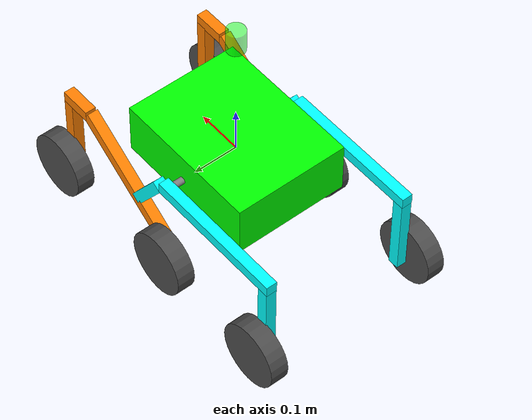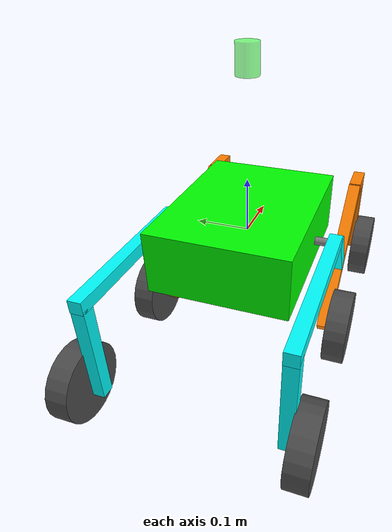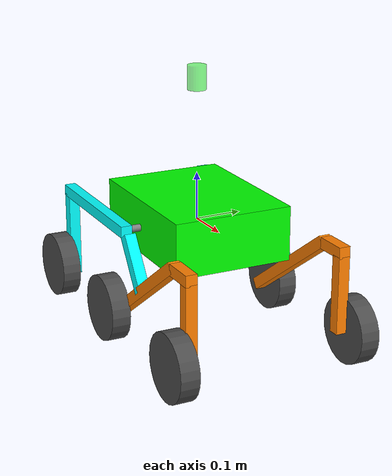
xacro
<?xml version="1.0"?>
<robot xmlns:xacro="http://www.ros.org/wiki/xacro" name="rocker_bogie">

  <!-- Properties for reuse -->
  <xacro:property name="wheel_radius" value="0.07"/>
  <xacro:property name="wheel_length" value="0.04"/>
  <xacro:property name="chassis_size" value="0.334 0.254 0.115"/>
  <xacro:property name="wheel_color" value="0.3 0.3 0.3 1"/>
  <xacro:property name="blue_color" value="0 1 1 1"/>
  <xacro:property name="orange_color" value="1 0.5 0 1"/>

<!-- Base Link at the Center of the Chassis -->
<link name="base_link">
  <visual>
    <geometry>
      <sphere radius="0.01"/>  <!-- Small sphere for visual debugging -->
    </geometry>
    <origin xyz="0 0 0"/>  <!-- Centered inside the chassis -->
    <material name="gray">
      <color rgba="0.5 0.5 0.5 1"/>
    </material>
  </visual>
</link>

<link name="lidar_link">
  <visual>
    <geometry>
          <cylinder length="0.05" radius="0.02"/> <!-- Adjust dimensions as needed -->
      </geometry>
      <material name="green_material">
          <color rgba="0.0 1.0 0.0 0.5"/> <!-- Semi-transparent green for visualization -->
      </material>
  </visual>
  <collision>
      <geometry>
          <cylinder length="0.05" radius="0.02"/>
      </geometry>
  </collision>
  <inertial>
      <mass value="0.1"/> <!-- Adjust mass -->
      <inertia ixx="0.01" ixy="0.0" ixz="0.0" iyy="0.01" iyz="0.0" izz="0.01"/>
  </inertial>
</link>
<joint name="lidar_joint" type="fixed">
  <parent link="base_link"/>
  <child link="lidar_link"/>
  <origin xyz="0 0 0.3" rpy="0 0 0"/> <!-- Position the LiDAR slightly above the rover chassis -->
</joint>

  <!-- Macro for Chassis -->
<xacro:macro name="chassis" params="">
  <link name="chassis">
    <visual>
      <geometry>
        <box size="${chassis_size}"/>
      </geometry>
      <origin xyz="0 0 0"/>
      <material name="green">
        <color rgba="0 1 0 1"/>
      </material>
    </visual>
    <collision>
      <geometry>
        <box size="${chassis_size}"/>
      </geometry>
      <origin xyz="0 0 0"/>
    </collision>
    <inertial>
      <mass value="5.3"/>
      <origin xyz="0 0 0"/>  <!-- Set CoM to the geometric center -->
      <inertia ixx="0.1" ixy="0" ixz="0" iyy="0.1" iyz="0" izz="0.2"/>
    </inertial>
  </link>
</xacro:macro>

  <!-- Macro for Cylinder Connector -->
<xacro:macro name="cylinder_connector" params="name position_y">
  <link name="${name}">
    <visual>
      <geometry>
        <cylinder radius="0.0075" length="0.03"/>
      </geometry>
      <origin xyz="0 ${position_y} 0" rpy="1.5707 0 0"/>
      <material name="gray">
        <color rgba="0.5 0.5 0.5 1"/>
      </material>
    </visual>
    <collision>
      <geometry>
        <cylinder radius="0.0075" length="0.028"/>
      </geometry>
      <origin xyz="0 ${position_y} 0" rpy="1.5707 0 0"/>
    </collision>
    <inertial>
      <mass value="0.5"/>
      <origin xyz="0 ${position_y} 0"/>  <!-- CoM aligned with connector -->
      <inertia ixx="0.00005" ixy="0" ixz="0" iyy="0.00005" iyz="0" izz="0.0001"/>
    </inertial>
  </link>
</xacro:macro>

  <!-- Macro for Rocker Arms -->
<xacro:macro name="rocker_arm" params="name position_y">
  <link name="${name}">
    <visual> <!-- Horizontal Bar Collision -->
      <geometry><box size="0.32 0.024 0.024"/></geometry>
      <origin xyz="-0.147 ${position_y} 0"/>
      <material name="blue"><color rgba="${blue_color}"/></material>
    </visual>
    <visual> <!-- Vertical Bar Collision -->
      <geometry><box size="0.024 0.024 0.186"/></geometry>
      <origin xyz="-0.294 ${position_y} -0.1"/>
      <material name="blue"><color rgba="${blue_color}"/></material>
    </visual>
    <visual> <!-- Rotating Bar Collision -->
      <geometry><box size="0.024 0.024 0.12"/></geometry>
      <origin xyz="0.055 ${position_y} -0.055" rpy="0 -0.61 0"/>
      <material name="blue"><color rgba="${blue_color}"/></material>
    </visual>

    <collision> <!-- Horizontal Bar Collision -->
      <geometry>
        <box size="0.32 0.024 0.024"/>
      </geometry>
      <origin xyz="-0.147 ${position_y} 0"/>
    </collision>

    <collision> <!-- Vertical Bar Collision -->
      <geometry>
        <box size="0.024 0.024 0.186"/>
      </geometry>
      <origin xyz="-0.294 ${position_y} -0.1"/>
    </collision>

    <collision> <!-- Rotating Bar Collision -->
      <geometry>
        <box size="0.024 0.024 0.12"/>
      </geometry>
      <origin xyz="0.055 ${position_y} -0.055" rpy="0 -0.61 0"/>
    </collision>

    <inertial>
      <!-- Adjusted mass to match the size -->
      <mass value="0.25"/>
      <!-- CoM aligned to the center of the rocker arm -->
      <origin xyz="-0.15 ${position_y} 0"/>

      <!-- Adjusted inertia tensor values -->
      <inertia ixx="0.005" ixy="0" ixz="0" iyy="0.006" iyz="0" izz="0.007"/>
    </inertial>
  </link>
</xacro:macro>

  <!-- Macro for Bogie Arms -->
<xacro:macro name="bogie_arm" params="name position_y">
  <link name="${name}">
    <visual> <!-- Horizontal Bar -->
      <geometry>
        <box size="0.07 0.024 0.024"/>
      </geometry>
      <origin xyz="0.177 ${position_y} 0.1"/>
      <material name="orange">
        <color rgba="${orange_color}"/>
      </material>
    </visual>

    <visual> <!-- Front Vertical Bar -->
      <geometry>
        <box size="0.024 0.024 0.162"/>
      </geometry>
      <origin xyz="0.2 ${position_y} 0.01"/>
      <material name="orange">
        <color rgba="${orange_color}"/>
      </material>
    </visual>

    <visual> <!-- Back Rotating Bar -->
      <geometry>
        <box size="0.024 0.024 0.323"/>
      </geometry>
      <origin xyz="0.01 ${position_y} 0.01" rpy="0 0.96 0"/>
      <material name="orange">
        <color rgba="${orange_color}"/>
      </material>
    </visual>

    <collision> <!-- Horizontal Bar Collision -->
      <geometry>
        <box size="0.07 0.024 0.024"/>
      </geometry>
      <origin xyz="0.177 ${position_y} 0.1"/>
    </collision>

    <collision> <!-- Front Vertical Bar Collision -->
      <geometry>
        <box size="0.024 0.024 0.162"/>
      </geometry>
      <origin xyz="0.2 ${position_y} 0.01"/>
    </collision>

    <collision> <!-- Back Rotating Bar Collision -->
      <geometry>
        <box size="0.024 0.024 0.323"/>
      </geometry>
      <origin xyz="0.01 ${position_y} 0.01" rpy="0 0.96 0"/>
    </collision>

    <inertial>
      <mass value="0.4"/>
      <origin xyz="0 0 0"/>
      <inertia ixx="0.004" ixy="0" ixz="0" iyy="0.004" iyz="0" izz="0.008"/>
    </inertial>
  </link>
</xacro:macro>

  <!-- Create Links -->
  <xacro:chassis/>
  <xacro:rocker_arm name="rocker_left" position_y="0"/>
  <xacro:rocker_arm name="rocker_right" position_y="0"/>
  <xacro:bogie_arm name="bogie_left" position_y="0"/>
  <xacro:bogie_arm name="bogie_right" position_y="0"/>
  <xacro:cylinder_connector name="cylinder_connector_left" position_y="0.145"/>
  <xacro:cylinder_connector name="cylinder_connector_right" position_y="-0.145"/>

 <!-- MACRO : Fixed Joints -->
<xacro:macro name="fixed_joint" params="joint_name parent_link child_link origin_z">
  <joint name="${joint_name}" type="fixed">
    <parent link="${parent_link}"/>
    <child link="${child_link}"/>
    <origin xyz="0 0 ${origin_z}"/>
  </joint>
</xacro:macro>

  <!-- Create Fixed Joints -->
<xacro:fixed_joint joint_name="base_to_chassis" parent_link="base_link" child_link="chassis" origin_z="0"/>
<xacro:fixed_joint joint_name="joint_chassis_to_cylinder_left" parent_link="chassis" child_link="cylinder_connector_left" origin_z="0"/>
<xacro:fixed_joint joint_name="joint_chassis_to_cylinder_right" parent_link="chassis" child_link="cylinder_connector_right" origin_z="0"/>

  <!-- MACRO : Revolute Joints -->
<xacro:macro name="revolute_joint"
params="joint_name parent_link child_link origin_x origin_y origin_z">
  <joint name="${joint_name}" type="revolute">
    <parent link="${parent_link}"/>
    <child link="${child_link}"/>
    <origin xyz="${origin_x} ${origin_y} ${origin_z}"/>
    <axis xyz="0 1 0"/>
    <limit lower="-0.26" upper="0.26" velocity="100" effort="100"/>
    <dynamics damping="0.5" spring_stiffness="50"/>
    <gazebo>
      <spring_reference>0.0</spring_reference>  <!-- Neutral position -->
      <spring_stiffness>50.0</spring_stiffness> <!-- Spring constant -->
      <damping>0.5</damping>                   <!-- Damping coefficient -->
    </gazebo>
  </joint>
</xacro:macro>

  <!-- Create Relovute joints : CYlinder-Rocker-Bogie-->
  <xacro:revolute_joint joint_name="joint_cylinder_left_to_rocker_left" parent_link="cylinder_connector_left" child_link="rocker_left" origin_x="0" origin_y="0.165" origin_z="0"/>
  <xacro:revolute_joint joint_name="joint_cylinder_left_to_rocker_right" parent_link="cylinder_connector_right" child_link="rocker_right" origin_x="0" origin_y="-0.165" origin_z="0"/>
  <xacro:revolute_joint joint_name="joint_rocker_to_bogie_left" parent_link="rocker_left" child_link="bogie_left" origin_x="0.1" origin_y="0" origin_z="-0.1"/>
  <xacro:revolute_joint joint_name="joint_rocker_to_bogie_right" parent_link="rocker_right" child_link="bogie_right" origin_x="0.1" origin_y="0" origin_z="-0.1"/>

  <!-- Macro  Wheels links -->
  <xacro:macro name="wheel" params="name">
    <link name="${name}">
      <visual>
        <geometry><cylinder radius="${wheel_radius}" length="${wheel_length}"/></geometry>
        <origin xyz="0 0 0" rpy="1.5707 0 0"/>
        <material name="gray"><color rgba="${wheel_color}"/></material>
      </visual>
      <collision>
        <geometry><cylinder radius="${wheel_radius}" length="${wheel_length}"/></geometry>
        <origin xyz="0 0 0" rpy="1.5707 0 0"/>
      </collision>
      <inertial><mass value="4"/><origin xyz="0 0 0"/>
        <inertia ixx="0.0005" ixy="0" ixz="0" iyy="0.0005" iyz="0" izz="0.001"/>
      </inertial>
    </link>
  </xacro:macro>

<!-- MACRO : Wheel Joints -->
<xacro:macro name="wheel_joint" params="wheel_name parent_link origin_x origin_y origin_z">
  <joint name="joint_${wheel_name}" type="continuous">
    <parent link="${parent_link}"/> <!-- Attach the wheel to the correct parent link (e.g., bogie or rocker) -->
    <child link="${wheel_name}"/>
    <origin xyz="${origin_x} ${origin_y} ${origin_z}"/>
    <axis xyz="0 1 0"/> <!-- Rotate around y-axis -->
    <gazebo>
      <mu1>2.0</mu1> <!-- Primary friction coefficient -->
      <mu2>2.0</mu2> <!-- Secondary friction coefficient -->
    </gazebo>
  </joint>
</xacro:macro>

<!-- Create Wheel link  -->
  <xacro:wheel name="wheel_front_left"/>
  <xacro:wheel name="wheel_middle_left"/>
  <xacro:wheel name="wheel_back_left"/>
  <xacro:wheel name="wheel_front_right"/>
  <xacro:wheel name="wheel_middle_right"/>
  <xacro:wheel name="wheel_back_right"/>

<!-- Create Wheel Joint  -->
<xacro:wheel_joint wheel_name="wheel_front_left" parent_link="bogie_left" origin_x="0.2" origin_y="0.03" origin_z="-0.07"/>
<xacro:wheel_joint wheel_name="wheel_middle_left" parent_link="bogie_left" origin_x="-0.12" origin_y="0.03" origin_z="-0.07"/>
<xacro:wheel_joint wheel_name="wheel_back_left" parent_link="rocker_left" origin_x="-0.3" origin_y="0.03" origin_z="-0.17"/>
<xacro:wheel_joint wheel_name="wheel_front_right" parent_link="bogie_right" origin_x="0.2" origin_y="-0.03" origin_z="-0.07"/>
<xacro:wheel_joint wheel_name="wheel_middle_right" parent_link="bogie_right" origin_x="-0.12" origin_y="-0.03" origin_z="-0.07"/>
<xacro:wheel_joint wheel_name="wheel_back_right" parent_link="rocker_right" origin_x="-0.3" origin_y="-0.03" origin_z="-0.17"/>

<gazebo reference="lidar_link">
  <material name="black"><color rgba="0.0 0.0 0.0 1.0"/></material>
  <sensor type="ray" name="lidar_sensor">
    <pose>0 0 0.3 0 0 0</pose>
    <visualize>true</visualize>
    <update_rate>5</update_rate>
    <ray>
      <scan>
        <horizontal>
          <samples>360</samples>
          <resolution>1</resolution>
          <min_angle>0</min_angle> <!-- -90 degrees -->
          <max_angle>6.28</max_angle>  <!-- +90 degrees -->
        </horizontal>
      </scan>
      <range>
        <min>0.2</min> <!-- Min detection distance -->
        <max>3.5</max> <!-- Max detection distance -->
        <resolution>0.015</resolution>
      </range>
      <noise>
        <type>gaussian</type>
        <mean>0.0</mean>
        <stddev>0.01</stddev>
      </noise>
    </ray>
    <plugin name="gazebo_ros_laser" filename="libgazebo_ros_laser.so">
      <topicName>scan</topicName>
      <frameName>lidar_link</frameName>
    </plugin>
  </sensor>
</gazebo>

<gazebo>
  <plugin name="skid_steering_plugin" filename="libskid_steering_plugin.so">
    <left_joint>joint_wheel_front_left</left_joint>
    <left_joint>joint_wheel_middle_left</left_joint>
    <left_joint>joint_wheel_back_left</left_joint>
    <right_joint>joint_wheel_front_right</right_joint>
    <right_joint>joint_wheel_middle_right</right_joint>
    <right_joint>joint_wheel_back_right</right_joint>
  </plugin>
</gazebo>

</robot>
